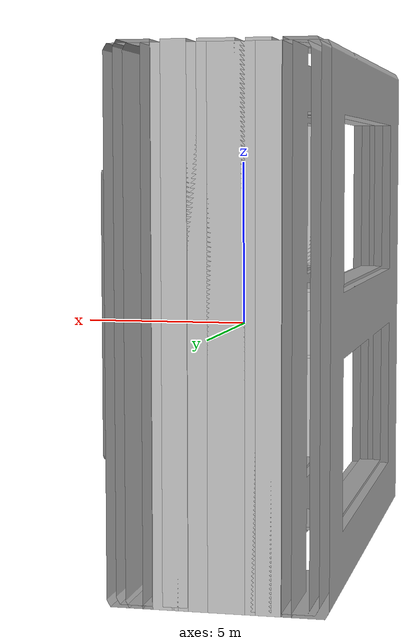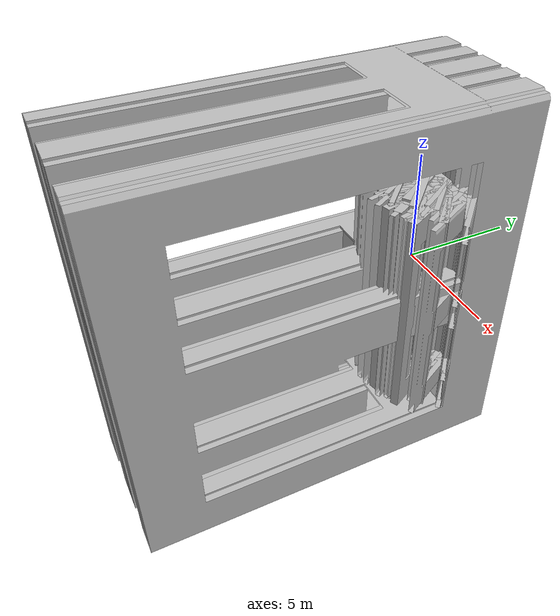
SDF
<sdf version='1.4'>
	<model name='step_pallets+stepping_blocks'>
		<static>1</static>
		<link name='pallet_1'>
			<pose>0 0 0 0 0 0</pose>
			<collision name='collision'>
				<geometry>
					<mesh>
						<uri>model://pallet_benchmark/mesh/pallet.dae</uri>
						<scale>0.787 11.81 1.417</scale>
					</mesh>
				</geometry>
				<surface>
					<bounce>
						<restitution_coefficient>0.01</restitution_coefficient>
						<threshold>5</threshold>
					</bounce>
					<friction>
						<ode>
							<mu>10</mu>
							<mu2>10</mu2>
						</ode>
					</friction>
					<contact>
						<ode>
							<soft_cfm>0.001</soft_cfm>
							<kp>100000</kp>
							<kd>1000</kd>
						</ode>
					</contact>
				</surface>
				<max_contacts>10</max_contacts>
			</collision>
			<visual name='visual'>
				<geometry>
					<mesh>
						<uri>model://pallet_benchmark/mesh/pallet.dae</uri>
						<scale>0.787 11.81 1.417</scale>
					</mesh>
				</geometry>
			</visual>
		</link>
		<link name='pallet_2'>
			<pose>0.6 0 0 0 0 0</pose>
			<collision name='collision'>
				<geometry>
					<mesh>
						<uri>model://pallet_benchmark/mesh/pallet.dae</uri>
						<scale>0.787 11.81 1.417</scale>
					</mesh>
				</geometry>
				<surface>
					<bounce>
						<restitution_coefficient>0.01</restitution_coefficient>
						<threshold>5</threshold>
					</bounce>
					<friction>
						<ode>
							<mu>10</mu>
							<mu2>10</mu2>
						</ode>
					</friction>
					<contact>
						<ode>
							<soft_cfm>0.001</soft_cfm>
							<kp>100000</kp>
							<kd>1000</kd>
						</ode>
					</contact>
				</surface>
				<max_contacts>10</max_contacts>
			</collision>
			<visual name='visual'>
				<geometry>
					<mesh>
						<uri>model://pallet_benchmark/mesh/pallet.dae</uri>
						<scale>0.787 11.81 1.417</scale>
					</mesh>
				</geometry>
			</visual>
		</link>
		<link name='pallet_3'>
			<pose>0.3 0 0.1 0 0 0</pose>
			<collision name='collision'>
				<geometry>
					<mesh>
						<uri>model://pallet_benchmark/mesh/pallet.dae</uri>
						<scale>0.787 11.81 1.417</scale>
					</mesh>
				</geometry>
				<surface>
					<bounce>
						<restitution_coefficient>0.01</restitution_coefficient>
						<threshold>5</threshold>
					</bounce>
					<friction>
						<ode>
							<mu>10</mu>
							<mu2>10</mu2>
						</ode>
					</friction>
					<contact>
						<ode>
							<soft_cfm>0.001</soft_cfm>
							<kp>100000</kp>
							<kd>1000</kd>
						</ode>
					</contact>
				</surface>
				<max_contacts>10</max_contacts>
			</collision>
			<visual name='visual'>
				<geometry>
					<mesh>
						<uri>model://pallet_benchmark/mesh/pallet.dae</uri>
						<scale>0.787 11.81 1.417</scale>
					</mesh>
				</geometry>
			</visual>
		</link>
		<link name='block_1'>
			<pose>0.883136 -0.259336 0.14 0 -0 0.8</pose>
			<collision name='collision'>
				<geometry>
					<mesh>
						<uri>model://blockwood_benchmark/mesh/pallet.dae</uri>
						<scale>0.246 2.46 0.787</scale>
					</mesh>
				</geometry>
				<surface>
					<bounce>
						<restitution_coefficient>0.01</restitution_coefficient>
						<threshold>5</threshold>
					</bounce>
					<friction>
						<ode>
							<mu>10</mu>
							<mu2>10</mu2>
						</ode>
					</friction>
					<contact>
						<ode>
							<soft_cfm>0.001</soft_cfm>
							<kp>100000</kp>
							<kd>1000</kd>
						</ode>
					</contact>
				</surface>
				<max_contacts>10</max_contacts>
			</collision>
			<visual name='visual'>
				<geometry>
					<mesh>
						<uri>model://blockwood_benchmark/mesh/pallet.dae</uri>
						<scale>0.246 2.46 0.787</scale>
					</mesh>
				</geometry>
			</visual>
		</link>
		<link name='block_2'>
			<pose>0.894058 0.21412 0.14 0 -0 0.56</pose>
			<collision name='collision'>
				<geometry>
					<mesh>
						<uri>model://blockwood_benchmark/mesh/pallet.dae</uri>
						<scale>0.246 2.46 0.787</scale>
					</mesh>
				</geometry>
				<surface>
					<bounce>
						<restitution_coefficient>0.01</restitution_coefficient>
						<threshold>5</threshold>
					</bounce>
					<friction>
						<ode>
							<mu>10</mu>
							<mu2>10</mu2>
						</ode>
					</friction>
					<contact>
						<ode>
							<soft_cfm>0.001</soft_cfm>
							<kp>100000</kp>
							<kd>1000</kd>
						</ode>
					</contact>
				</surface>
				<max_contacts>10</max_contacts>
			</collision>
			<visual name='visual'>
				<geometry>
					<mesh>
						<uri>model://blockwood_benchmark/mesh/pallet.dae</uri>
						<scale>0.246 2.46 0.787</scale>
					</mesh>
				</geometry>
			</visual>
		</link>
		<link name='block_3'>
			<pose>1.19791 -0.142692 0.04 0 0 -0.36</pose>
			<collision name='collision'>
				<geometry>
					<mesh>
						<uri>model://blockwood_benchmark/mesh/pallet.dae</uri>
						<scale>0.246 2.46 0.787</scale>
					</mesh>
				</geometry>
				<surface>
					<bounce>
						<restitution_coefficient>0.01</restitution_coefficient>
						<threshold>5</threshold>
					</bounce>
					<friction>
						<ode>
							<mu>10</mu>
							<mu2>10</mu2>
						</ode>
					</friction>
					<contact>
						<ode>
							<soft_cfm>0.001</soft_cfm>
							<kp>100000</kp>
							<kd>1000</kd>
						</ode>
					</contact>
				</surface>
				<max_contacts>10</max_contacts>
			</collision>
			<visual name='visual'>
				<geometry>
					<mesh>
						<uri>model://blockwood_benchmark/mesh/pallet.dae</uri>
						<scale>0.246 2.46 0.787</scale>
					</mesh>
				</geometry>
			</visual>
		</link>
		<link name='block_4'>
			<pose>1.26288 0.17517 0.04 0 -0 0</pose>
			<collision name='collision'>
				<geometry>
					<mesh>
						<uri>model://blockwood_benchmark/mesh/pallet.dae</uri>
						<scale>0.246 2.46 0.787</scale>
					</mesh>
				</geometry>
				<surface>
					<bounce>
						<restitution_coefficient>0.01</restitution_coefficient>
						<threshold>5</threshold>
					</bounce>
					<friction>
						<ode>
							<mu>10</mu>
							<mu2>10</mu2>
						</ode>
					</friction>
					<contact>
						<ode>
							<soft_cfm>0.001</soft_cfm>
							<kp>100000</kp>
							<kd>1000</kd>
						</ode>
					</contact>
				</surface>
				<max_contacts>10</max_contacts>
			</collision>
			<visual name='visual'>
				<geometry>
					<mesh>
						<uri>model://blockwood_benchmark/mesh/pallet.dae</uri>
						<scale>0.246 2.46 0.787</scale>
					</mesh>
				</geometry>
			</visual>
		</link>
		<link name='block_5'>
			<pose>1.47008 -0.40017 0.04 0 -0 0.52</pose>
			<collision name='collision'>
				<geometry>
					<mesh>
						<uri>model://blockwood_benchmark/mesh/pallet.dae</uri>
						<scale>0.246 2.46 0.787</scale>
					</mesh>
				</geometry>
				<surface>
					<bounce>
						<restitution_coefficient>0.01</restitution_coefficient>
						<threshold>5</threshold>
					</bounce>
					<friction>
						<ode>
							<mu>10</mu>
							<mu2>10</mu2>
						</ode>
					</friction>
					<contact>
						<ode>
							<soft_cfm>0.001</soft_cfm>
							<kp>100000</kp>
							<kd>1000</kd>
						</ode>
					</contact>
				</surface>
				<max_contacts>10</max_contacts>
			</collision>
			<visual name='visual'>
				<geometry>
					<mesh>
						<uri>model://blockwood_benchmark/mesh/pallet.dae</uri>
						<scale>0.246 2.46 0.787</scale>
					</mesh>
				</geometry>
			</visual>
		</link>
		<link name='block_6'>
			<pose>1.56639 -0.072299 0.04 0 -0 0</pose>
			<collision name='collision'>
				<geometry>
					<mesh>
						<uri>model://blockwood_benchmark/mesh/pallet.dae</uri>
						<scale>0.246 2.46 0.787</scale>
					</mesh>
				</geometry>
				<surface>
					<bounce>
						<restitution_coefficient>0.01</restitution_coefficient>
						<threshold>5</threshold>
					</bounce>
					<friction>
						<ode>
							<mu>10</mu>
							<mu2>10</mu2>
						</ode>
					</friction>
					<contact>
						<ode>
							<soft_cfm>0.001</soft_cfm>
							<kp>100000</kp>
							<kd>1000</kd>
						</ode>
					</contact>
				</surface>
				<max_contacts>10</max_contacts>
			</collision>
			<visual name='visual'>
				<geometry>
					<mesh>
						<uri>model://blockwood_benchmark/mesh/pallet.dae</uri>
						<scale>0.246 2.46 0.787</scale>
					</mesh>
				</geometry>
			</visual>
		</link>
		<link name='block_7'>
			<pose>1.68533 0.241091 0.04 0 -0 0.88</pose>
			<collision name='collision'>
				<geometry>
					<mesh>
						<uri>model://blockwood_benchmark/mesh/pallet.dae</uri>
						<scale>0.246 2.46 0.787</scale>
					</mesh>
				</geometry>
				<surface>
					<bounce>
						<restitution_coefficient>0.01</restitution_coefficient>
						<threshold>5</threshold>
					</bounce>
					<friction>
						<ode>
							<mu>10</mu>
							<mu2>10</mu2>
						</ode>
					</friction>
					<contact>
						<ode>
							<soft_cfm>0.001</soft_cfm>
							<kp>100000</kp>
							<kd>1000</kd>
						</ode>
					</contact>
				</surface>
				<max_contacts>10</max_contacts>
			</collision>
		<visual name='visual'>
			<geometry>
				<mesh>
					<uri>model://blockwood_benchmark/mesh/pallet.dae</uri>
					<scale>0.246 2.46 0.787</scale>
				</mesh>
			</geometry>
		</visual>
	</link>
	<link name='block_8'>
		<pose>1.8306 -0.340131 0.04 0 -0 0.24</pose>
		<collision name='collision'>
			<geometry>
				<mesh>
					<uri>model://blockwood_benchmark/mesh/pallet.dae</uri>
					<scale>0.246 2.46 0.787</scale>
				</mesh>
			</geometry>
			<surface>
				<bounce>
					<restitution_coefficient>0.01</restitution_coefficient>
					<threshold>5</threshold>
				</bounce>
				<friction>
					<ode>
						<mu>10</mu>
						<mu2>10</mu2>
					</ode>
				</friction>
				<contact>
					<ode>
						<soft_cfm>0.001</soft_cfm>
						<kp>100000</kp>
						<kd>1000</kd>
					</ode>
				</contact>
			</surface>
			<max_contacts>10</max_contacts>
		</collision>
		<visual name='visual'>
			<geometry>
				<mesh>
					<uri>model://blockwood_benchmark/mesh/pallet.dae</uri>
					<scale>0.246 2.46 0.787</scale>
				</mesh>
			</geometry>
		</visual>
	</link>
	<link name='block_9'>
		<pose>1.87848 0.045718 0.04 0 -0 0.48</pose>
		<collision name='collision'>
			<geometry>
				<mesh>
					<uri>model://blockwood_benchmark/mesh/pallet.dae</uri>
					<scale>0.246 2.46 0.787</scale>
				</mesh>
			</geometry>
			<surface>
				<bounce>
					<restitution_coefficient>0.01</restitution_coefficient>
					<threshold>5</threshold>
				</bounce>
				<friction>
					<ode>
						<mu>10</mu>
						<mu2>10</mu2>
					</ode>
				</friction>
				<contact>
					<ode>
						<soft_cfm>0.001</soft_cfm>
						<kp>100000</kp>
						<kd>1000</kd>
					</ode>
				</contact>
			</surface>
			<max_contacts>10</max_contacts>
		</collision>
		<visual name='visual'>
			<geometry>
				<mesh>
					<uri>model://blockwood_benchmark/mesh/pallet.dae</uri>
					<scale>0.246 2.46 0.787</scale>
				</mesh>
			</geometry>
		</visual>
	</link>
	<link name='block_10'>
		<pose>2.13712 -0.192702 0.04 0 0 -1.56</pose>
		<collision name='collision'>
			<geometry>
				<mesh>
					<uri>model://blockwood_benchmark/mesh/pallet.dae</uri>
					<scale>0.246 2.46 0.787</scale>
				</mesh>
			</geometry>
			<surface>
				<bounce>
					<restitution_coefficient>0.01</restitution_coefficient>
					<threshold>5</threshold>
				</bounce>
				<friction>
					<ode>
						<mu>10</mu>
						<mu2>10</mu2>
					</ode>
				</friction>
				<contact>
					<ode>
						<soft_cfm>0.001</soft_cfm>
						<kp>100000</kp>
						<kd>1000</kd>
					</ode>
				</contact>
			</surface>
			<max_contacts>10</max_contacts>
		</collision>
		<visual name='visual'>
			<geometry>
				<mesh>
					<uri>model://blockwood_benchmark/mesh/pallet.dae</uri>
					<scale>0.246 2.46 0.787</scale>
				</mesh>
			</geometry>
		</visual>
	</link>
	<link name='block_11'>
		<pose>2.16242 0.171136 0.04 0 -0 0.8</pose>
		<collision name='collision'>
			<geometry>
				<mesh>
					<uri>model://blockwood_benchmark/mesh/pallet.dae</uri>
					<scale>0.246 2.46 0.787</scale>
				</mesh>
			</geometry>
			<surface>
				<bounce>
					<restitution_coefficient>0.01</restitution_coefficient>
					<threshold>5</threshold>
				</bounce>
				<friction>
					<ode>
						<mu>10</mu>
						<mu2>10</mu2>
					</ode>
				</friction>
				<contact>
					<ode>
						<soft_cfm>0.001</soft_cfm>
						<kp>100000</kp>
						<kd>1000</kd>
					</ode>
				</contact>
			</surface>
			<max_contacts>10</max_contacts>
		</collision>
		<visual name='visual'>
			<geometry>
				<mesh>
					<uri>model://blockwood_benchmark/mesh/pallet.dae</uri>
					<scale>0.246 2.46 0.787</scale>
				</mesh>
			</geometry>
		</visual>
	</link>
	<link name='block_12'>
		<pose>2.47657 -0.266385 0.04 0 -0 0.48</pose>
		<collision name='collision'>
			<geometry>
				<mesh>
					<uri>model://blockwood_benchmark/mesh/pallet.dae</uri>
					<scale>0.246 2.46 0.787</scale>
				</mesh>
			</geometry>
			<surface>
				<bounce>
					<restitution_coefficient>0.01</restitution_coefficient>
					<threshold>5</threshold>
				</bounce>
				<friction>
					<ode>
						<mu>10</mu>
						<mu2>10</mu2>
					</ode>
				</friction>
				<contact>
					<ode>
						<soft_cfm>0.001</soft_cfm>
						<kp>100000</kp>
						<kd>1000</kd>
					</ode>
				</contact>
			</surface>
			<max_contacts>10</max_contacts>
		</collision>
		<visual name='visual'>
			<geometry>
				<mesh>
					<uri>model://blockwood_benchmark/mesh/pallet.dae</uri>
					<scale>0.246 2.46 0.787</scale>
				</mesh>
			</geometry>
		</visual>
	</link>
	<link name='block_13'>
		<pose>2.58173 0.046632 0.04 0 -0 0</pose>
		<collision name='collision'>
			<geometry>
				<mesh>
					<uri>model://blockwood_benchmark/mesh/pallet.dae</uri>
					<scale>0.246 2.46 0.787</scale>
				</mesh>
			</geometry>
			<surface>
				<bounce>
					<restitution_coefficient>0.01</restitution_coefficient>
					<threshold>5</threshold>
				</bounce>
				<friction>
					<ode>
						<mu>10</mu>
						<mu2>10</mu2>
					</ode>
				</friction>
				<contact>
					<ode>
						<soft_cfm>0.001</soft_cfm>
						<kp>100000</kp>
						<kd>1000</kd>
					</ode>
				</contact>
			</surface>
			<max_contacts>10</max_contacts>
		</collision>
		<visual name='visual'>
			<geometry>
				<mesh>
					<uri>model://blockwood_benchmark/mesh/pallet.dae</uri>
					<scale>0.246 2.46 0.787</scale>
				</mesh>
			</geometry>
		</visual>
	</link>
	<link name='block_14'>
		<pose>2.48179 0.359519 0.04 0 0 -0.52</pose>
		<collision name='collision'>
			<geometry>
				<mesh>
					<uri>model://blockwood_benchmark/mesh/pallet.dae</uri>
					<scale>0.246 2.46 0.787</scale>
				</mesh>
			</geometry>
			<surface>
				<bounce>
					<restitution_coefficient>0.01</restitution_coefficient>
					<threshold>5</threshold>
				</bounce>
				<friction>
					<ode>
						<mu>10</mu>
						<mu2>10</mu2>
					</ode>
				</friction>
				<contact>
					<ode>
						<soft_cfm>0.001</soft_cfm>
						<kp>100000</kp>
						<kd>1000</kd>
					</ode>
				</contact>
			</surface>
			<max_contacts>10</max_contacts>
		</collision>
		<visual name='visual'>
			<geometry>
				<mesh>
					<uri>model://blockwood_benchmark/mesh/pallet.dae</uri>
					<scale>0.246 2.46 0.787</scale>
				</mesh>
			</geometry>
		</visual>
	</link>
</model>
</sdf>
